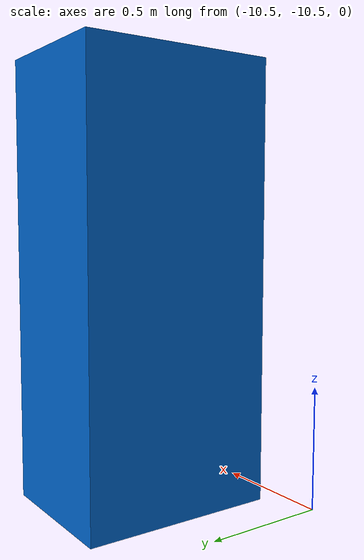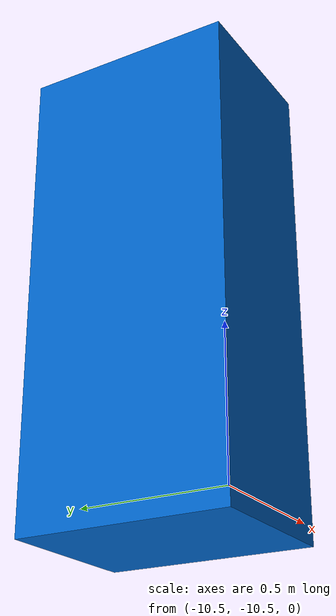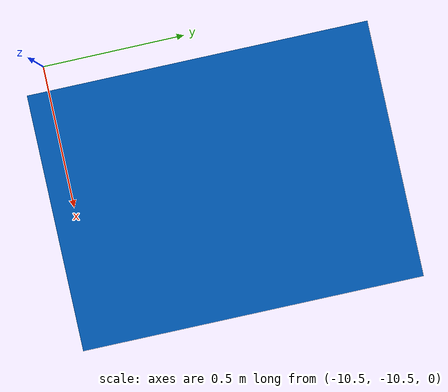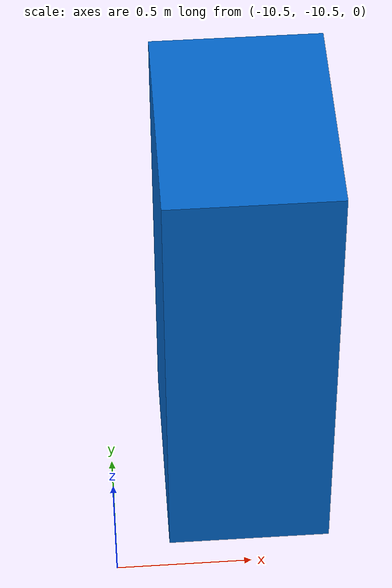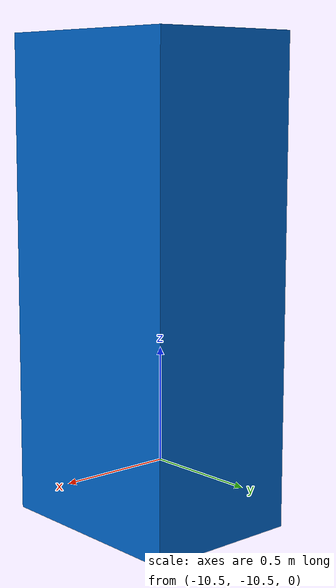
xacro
<?xml version="1.0"?>
<robot name="human_box" xmlns:xacro="http://www.ros.org/wiki/xacro">

  <xacro:arg name="robot_name" default="human_0" />
  <xacro:arg name="traj_x" default="0.0" />
  <xacro:arg name="traj_y" default="0.0" />
  <xacro:arg name="traj_z" default="0.0" />
  <xacro:arg name="enable_motion_plugin" default="true" />

  <material name="human_blue">
    <color rgba="0.0 0.4 0.8 1"/>
  </material>

  <link name="base_link">
    <inertial>
      <mass value="70.0" />
      <origin xyz="0 0 0.9" rpy="0 0 0" />
      <inertia ixx="22.6" ixy="0" ixz="0" iyy="21.0" iyz="0" izz="5.8" />
    </inertial>

    <visual>
        <origin xyz="-10.0 -10.0 0.9" rpy="0 0 0" />
        <geometry>
          <box size="0.6 0.8 1.8"/>
        </geometry>
        <material name="human_blue"/>
    </visual>

    <collision>
        <origin xyz="-10.0 -10.0 0.9" rpy="0 0 0" />
        <geometry>
          <box size="0.6 0.8 1.8"/>
        </geometry>
    </collision>
  </link>

  <gazebo reference="base_link">
    <gravity>0</gravity>
    <material>Gazebo/Blue</material>
  </gazebo>

  <xacro:if value="$(arg enable_motion_plugin)">
    <gazebo>
      <plugin name="move_model" filename="libmove_model.so">
        <traj_x>$(arg traj_x)</traj_x>
        <traj_y>$(arg traj_y)</traj_y>
        <traj_z>$(arg traj_z)</traj_z>
      </plugin>
    </gazebo>
  </xacro:if>

</robot>
